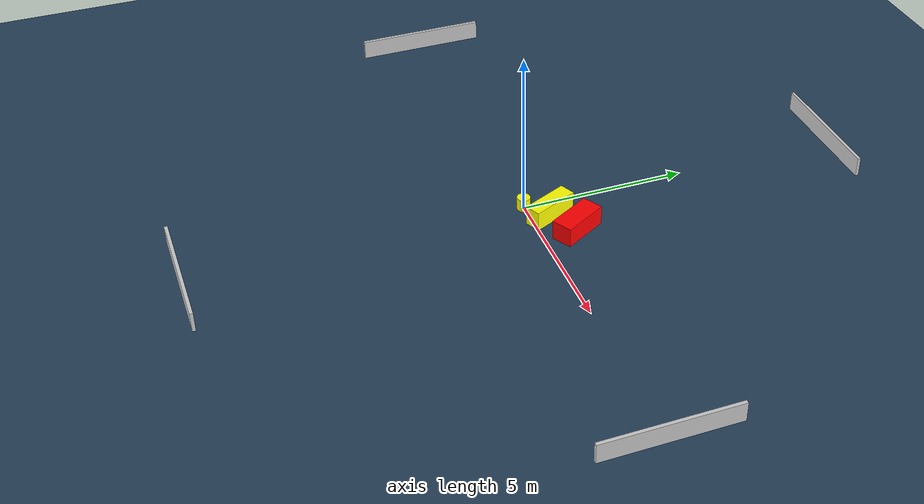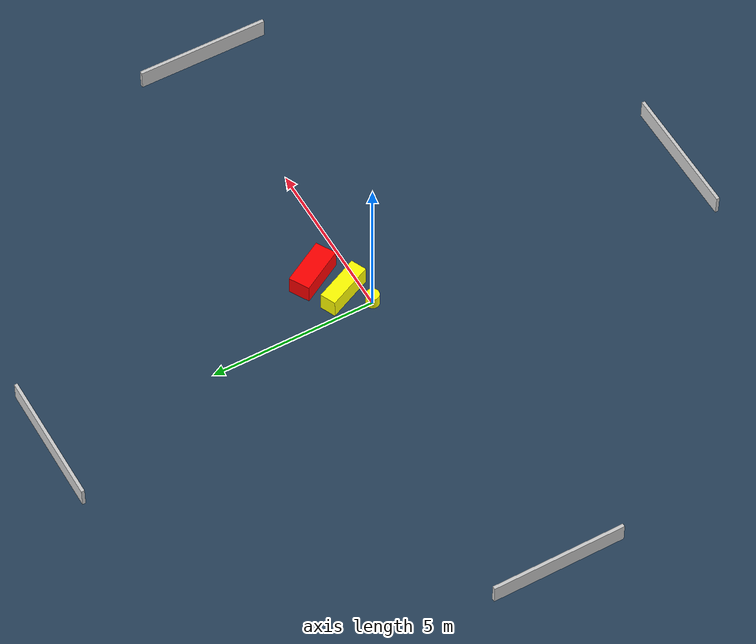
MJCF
<?xml version="1.0" ?>
<mujoco model="generated_environment">
  <option timestep="0.01" integrator="RK4" cone="elliptic"/>
  <default>
    <geom density="1"/>
  </default>
  <asset>
    <texture builtin="gradient" height="3072" name="skybox" rgb1="0.3 0.5 0.7" rgb2="0 0 0" type="skybox" width="512"/>
    <texture builtin="checker" height="300" name="groundplane" rgb1="0.2 0.3 0.4" rgb2="0.1 0.2 0.3" type="2d" width="300"/>
    <material name="groundplane" reflectance="0.2" texrepeat="5 5" texture="groundplane"/>
  </asset>
  <worldbody>
    <light dir="0 0 -1" directional="true" pos="0 0 1.5"/>
    <geom condim="3" friction="0.5 0.005 0.001" material="groundplane" name="floor" pos="0 0 0" size="0 0 0.05" type="plane"/>
    <body name="walls">
      <geom name="wall_1" condim="4" pos="-10.0 0.0 0.3" rgba="0.800000011920929 0.800000011920929 0.800000011920929 1.0" size="0.05 2.0 0.3" type="box"/>
      <geom name="wall_2" condim="4" pos="10.0 0.0 0.3" rgba="0.800000011920929 0.800000011920929 0.800000011920929 1.0" size="0.05 2.0 0.3" type="box"/>
      <geom name="wall_3" condim="4" pos="0.0 -10.0 0.3" rgba="0.800000011920929 0.800000011920929 0.800000011920929 1.0" size="2.0 0.05 0.3" type="box"/>
      <geom name="wall_4" condim="4" pos="0.0 10.0 0.3" rgba="0.800000011920929 0.800000011920929 0.800000011920929 1.0" size="2.0 0.05 0.3" type="box"/>
    </body>
    <body name="robot">
      <joint name="joint_x" type="slide" pos="0 0 0" axis="1 0 0"/>
      <joint name="joint_y" type="slide" pos="0 0 0" axis="0 1 0"/>
      <geom name="robot" type="cylinder" pos="0.0 0.0 0.2" size="0.2 0.2 0.0" mass="5.0" friction="1.0 0.005 0.0001" condim="4" rgba="1.0 1.0 0.0 1.0"/>
    </body>
    <body name="obstacle_1_movable">
      <geom name="obstacle_1_movable" condim="4" pos="0.6380954264764954 0.5718341005397043 0.3" euler="0 0 294.5994090868555" friction="0.0 0.005 0.001" rgba="1.0 1.0 0.0 1.0" size="0.7286442258222288 0.24189462574891604 0.3" type="box" mass="0.1"/>
      <joint type="free"/>
    </body>
    <body name="obstacle_2_static">
      <geom name="obstacle_2_static" condim="4" pos="1.5497225458728596 1.0406338118895513 0.3" euler="0 0 29.627484009403005" friction="0.0 0.005 0.001" rgba="1.0 0.0 0.0 1.0" size="0.3224566925584735 0.7202611835056352 0.3" type="box"/>
    </body>
  </worldbody>
  <actuator>
    <motor name="actuator_x" joint="joint_x" gear="1" ctrlrange="-1 1"/>
    <motor name="actuator_y" joint="joint_y" gear="1" ctrlrange="-1 1"/>
  </actuator>
</mujoco>
